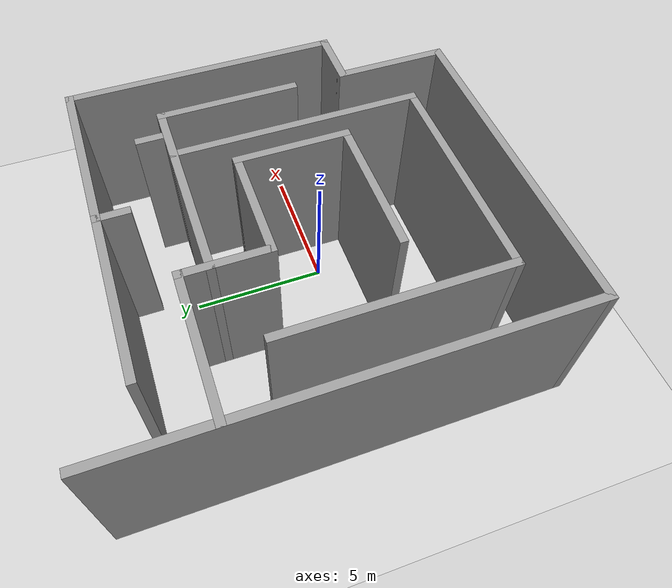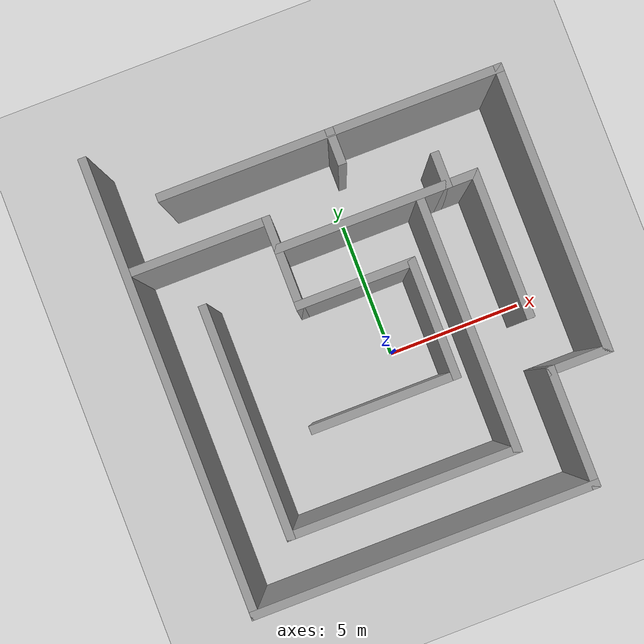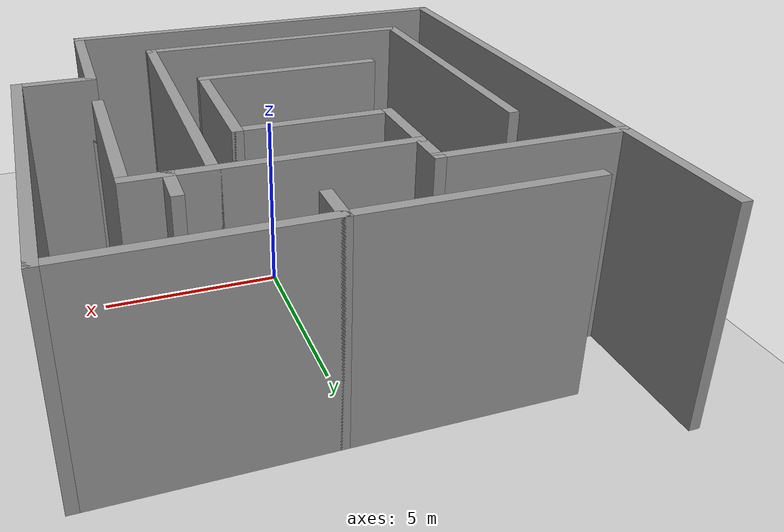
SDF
<sdf version="1.6">
 <world name="default">
  <light name="sun" type="directional">
   <pose>0 0 10 0 -0 0</pose>
   <diffuse>0.8 0.8 0.8 1</diffuse>
   <specular>0.2 0.2 0.2 1</specular>
   <attenuation>
    <range>1000</range>
    <constant>0.9</constant>
    <linear>0.01</linear>
    <quadratic>0.001</quadratic>
   </attenuation>
   <direction>-0.5 0.1 -0.9</direction>
  </light>
  <model name="ground_plane">
   <static>1</static>
   <link name="link">
    <collision name="collision">
     <geometry><plane><normal>0 0 1</normal><size>100 100</size></plane></geometry>
     <surface>
      <contact><collide_bitmask>65535</collide_bitmask></contact>
      <friction><ode><mu>100</mu><mu2>50</mu2></ode></friction>
     </surface>
    </collision>
    <visual name="visual">
     <cast_shadows>0</cast_shadows>
     <geometry><plane><normal>0 0 1</normal><size>100 100</size></plane></geometry>
     <material>
      <script><uri>file://media/materials/scripts/gazebo.material</uri><name>Gazebo/Grey</name></script>
     </material>
    </visual>
   </link>
  </model>
  <gravity>0 0 -9.8</gravity>
  <magnetic_field>6e-06 2.3e-05 -4.2e-05</magnetic_field>
  <atmosphere type="adiabatic"/>
  <physics name="default_physics" default="0" type="ode">
   <max_step_size>0.001</max_step_size>
   <real_time_factor>1</real_time_factor>
   <real_time_update_rate>1000</real_time_update_rate>
  </physics>
  <scene><ambient>0.4 0.4 0.4 1</ambient><background>0.7 0.7 0.7 1</background><shadows>1</shadows></scene>
  <audio><device>default</device></audio>
  <spherical_coordinates>
   <surface_model>EARTH_WGS84</surface_model>
   <latitude_deg>0</latitude_deg>
   <longitude_deg>0</longitude_deg>
   <elevation>0</elevation>
   <heading_deg>0</heading_deg>
  </spherical_coordinates>
  <model name="maze2">
   <pose>-0.5 1.5 0 0 -0 0</pose>
   <link name="Wall_11">
    <collision name="Wall_11_Collision">
     <geometry><box><size>2.3 0.3 6</size></box></geometry>
     <pose>0 0 3 0 -0 0</pose>
    </collision>
    <visual name="Wall_11_Visual">
     <pose>0 0 3 0 -0 0</pose>
     <geometry><box><size>2.3 0.3 6</size></box></geometry>
     <material>
      <script><uri>file://media/materials/scripts/gazebo.material</uri><name>Gazebo/Grey</name></script>
      <ambient>1 1 1 1</ambient>
     </material>
     <meta><layer>0</layer></meta>
    </visual>
    <pose>6 -4 0 0 -0 0</pose>
   </link>
   <link name="Wall_13">
    <collision name="Wall_13_Collision">
     <geometry><box><size>10.3 0.3 6</size></box></geometry>
     <pose>0 0 3 0 -0 0</pose>
    </collision>
    <visual name="Wall_13_Visual">
     <pose>0 0 3 0 -0 0</pose>
     <geometry><box><size>10.3 0.3 6</size></box></geometry>
     <material>
      <script><uri>file://media/materials/scripts/gazebo.material</uri><name>Gazebo/Grey</name></script>
      <ambient>1 1 1 1</ambient>
     </material>
     <meta><layer>0</layer></meta>
    </visual>
    <pose>7 1 0 0 -0 1.5708</pose>
   </link>
   <link name="Wall_15">
    <collision name="Wall_15_Collision">
     <geometry><box><size>12.3 0.3 6</size></box></geometry>
     <pose>0 0 3 0 -0 0</pose>
    </collision>
    <visual name="Wall_15_Visual">
     <pose>0 0 3 0 -0 0</pose>
     <geometry><box><size>12.3 0.3 6</size></box></geometry>
     <material>
      <script><uri>file://media/materials/scripts/gazebo.material</uri><name>Gazebo/Grey</name></script>
      <ambient>1 1 1 1</ambient>
     </material>
     <meta><layer>0</layer></meta>
    </visual>
    <pose>1 6 0 0 -0 3.14159</pose>
   </link>
   <link name="Wall_17">
    <collision name="Wall_17_Collision">
     <geometry><box><size>5.3 0.3 6</size></box></geometry>
     <pose>0 0 3 0 -0 0</pose>
    </collision>
    <visual name="Wall_17_Visual">
     <pose>0 0 3 0 -0 0</pose>
     <geometry><box><size>5.3 0.3 6</size></box></geometry>
     <material>
      <script><uri>file://media/materials/scripts/gazebo.material</uri><name>Gazebo/Grey</name></script>
      <ambient>1 1 1 1</ambient>
     </material>
     <meta><layer>0</layer></meta>
    </visual>
    <pose>-4.5 4 0 0 -0 0</pose>
   </link>
   <link name="Wall_19">
    <collision name="Wall_19_Collision">
     <geometry><box><size>3.3 0.3 6</size></box></geometry>
     <pose>0 0 3 0 -0 0</pose>
    </collision>
    <visual name="Wall_19_Visual">
     <pose>0 0 3 0 -0 0</pose>
     <geometry><box><size>3.3 0.3 6</size></box></geometry>
     <material>
      <script><uri>file://media/materials/scripts/gazebo.material</uri><name>Gazebo/Grey</name></script>
      <ambient>1 1 1 1</ambient>
     </material>
     <meta><layer>0</layer></meta>
    </visual>
    <pose>-2 2.5 0 0 -0 -1.5708</pose>
   </link>
   <link name="Wall_21">
    <collision name="Wall_21_Collision">
     <geometry><box><size>4.3 0.3 6</size></box></geometry>
     <pose>0 0 3 0 -0 0</pose>
    </collision>
    <visual name="Wall_21_Visual">
     <pose>0 0 3 0 -0 0</pose>
     <geometry><box><size>4.3 0.3 6</size></box></geometry>
     <material>
      <script><uri>file://media/materials/scripts/gazebo.material</uri><name>Gazebo/Grey</name></script>
      <ambient>1 1 1 1</ambient>
     </material>
     <meta><layer>0</layer></meta>
    </visual>
    <pose>0 1 0 0 -0 0</pose>
   </link>
   <link name="Wall_23">
    <collision name="Wall_23_Collision">
     <geometry><box><size>4.3 0.3 6</size></box></geometry>
     <pose>0 0 3 0 -0 0</pose>
    </collision>
    <visual name="Wall_23_Visual">
     <pose>0 0 3 0 -0 0</pose>
     <geometry><box><size>4.3 0.3 6</size></box></geometry>
     <material>
      <script><uri>file://media/materials/scripts/gazebo.material</uri><name>Gazebo/Grey</name></script>
      <ambient>1 1 1 1</ambient>
     </material>
     <meta><layer>0</layer></meta>
    </visual>
    <pose>2 -1 0 0 -0 -1.5708</pose>
   </link>
   <link name="Wall_25">
    <collision name="Wall_25_Collision">
     <geometry><box><size>5.3 0.3 6</size></box></geometry>
     <pose>0 0 3 0 -0 0</pose>
    </collision>
    <visual name="Wall_25_Visual">
     <pose>0 0 3 0 -0 0</pose>
     <geometry><box><size>5.3 0.3 6</size></box></geometry>
     <material>
      <script><uri>file://media/materials/scripts/gazebo.material</uri><name>Gazebo/Grey</name></script>
      <ambient>1 1 1 1</ambient>
     </material>
     <meta><layer>0</layer></meta>
    </visual>
    <pose>-0.5 -3 0 0 -0 3.14159</pose>
   </link>
   <link name="Wall_27">
    <collision name="Wall_27_Collision">
     <geometry><box><size>7.3 0.3 6</size></box></geometry>
     <pose>0 0 3 0 -0 0</pose>
    </collision>
    <visual name="Wall_27_Visual">
     <pose>0 0 3 0 -0 0</pose>
     <geometry><box><size>7.3 0.3 6</size></box></geometry>
     <material>
      <script><uri>file://media/materials/scripts/gazebo.material</uri><name>Gazebo/Grey</name></script>
      <ambient>1 1 1 1</ambient>
     </material>
     <meta><layer>0</layer></meta>
    </visual>
    <pose>1.5 3 0 0 -0 0</pose>
   </link>
   <link name="Wall_29">
    <collision name="Wall_29_Collision">
     <geometry><box><size>5.3 0.3 6</size></box></geometry>
     <pose>0 0 3 0 -0 0</pose>
    </collision>
    <visual name="Wall_29_Visual">
     <pose>0 0 3 0 -0 0</pose>
     <geometry><box><size>5.3 0.3 6</size></box></geometry>
     <material>
      <script><uri>file://media/materials/scripts/gazebo.material</uri><name>Gazebo/Grey</name></script>
      <ambient>1 1 1 1</ambient>
     </material>
     <meta><layer>0</layer></meta>
    </visual>
    <pose>5 0.5 0 0 -0 -1.5708</pose>
   </link>
   <link name="Wall_3">
    <collision name="Wall_3_Collision">
     <geometry><box><size>16.3 0.3 6</size></box></geometry>
     <pose>0 0 3 0 -0 0</pose>
    </collision>
    <visual name="Wall_3_Visual">
     <pose>0 0 3 0 -0 0</pose>
     <geometry><box><size>16.3 0.3 6</size></box></geometry>
     <material>
      <script><uri>file://media/materials/scripts/gazebo.material</uri><name>Gazebo/Grey</name></script>
      <ambient>1 1 1 1</ambient>
     </material>
     <meta><layer>0</layer></meta>
    </visual>
    <pose>-7 0 0 0 -0 1.5708</pose>
   </link>
   <link name="Wall_33">
    <collision name="Wall_33_Collision">
     <geometry><box><size>9.3 0.3 6</size></box></geometry>
     <pose>0 0 3 0 -0 0</pose>
    </collision>
    <visual name="Wall_33_Visual">
     <pose>0 0 3 0 -0 0</pose>
     <geometry><box><size>9.3 0.3 6</size></box></geometry>
     <material>
      <script><uri>file://media/materials/scripts/gazebo.material</uri><name>Gazebo/Grey</name></script>
      <ambient>1 1 1 1</ambient>
     </material>
     <meta><layer>0</layer></meta>
    </visual>
    <pose>3 -1.5 0 0 -0 -1.5708</pose>
   </link>
   <link name="Wall_35">
    <collision name="Wall_35_Collision">
     <geometry><box><size>8.3 0.3 6</size></box></geometry>
     <pose>0 0 3 0 -0 0</pose>
    </collision>
    <visual name="Wall_35_Visual">
     <pose>0 0 3 0 -0 0</pose>
     <geometry><box><size>8.3 0.3 6</size></box></geometry>
     <material>
      <script><uri>file://media/materials/scripts/gazebo.material</uri><name>Gazebo/Grey</name></script>
      <ambient>1 1 1 1</ambient>
     </material>
     <meta><layer>0</layer></meta>
    </visual>
    <pose>-1 -6 0 0 -0 3.14159</pose>
   </link>
   <link name="Wall_37">
    <collision name="Wall_37_Collision">
     <geometry><box><size>8.3 0.3 6</size></box></geometry>
     <pose>0 0 3 0 -0 0</pose>
    </collision>
    <visual name="Wall_37_Visual">
     <pose>0 0 3 0 -0 0</pose>
     <geometry><box><size>8.3 0.3 6</size></box></geometry>
     <material>
      <script><uri>file://media/materials/scripts/gazebo.material</uri><name>Gazebo/Grey</name></script>
      <ambient>1 1 1 1</ambient>
     </material>
     <meta><layer>0</layer></meta>
    </visual>
    <pose>-5 -2 0 0 -0 1.5708</pose>
   </link>
   <link name="Wall_39">
    <collision name="Wall_39_Collision">
     <geometry><box><size>1.3 0.3 6</size></box></geometry>
     <pose>0 0 3 0 -0 0</pose>
    </collision>
    <visual name="Wall_39_Visual">
     <pose>0 0 3 0 -0 0</pose>
     <geometry><box><size>1.3 0.3 6</size></box></geometry>
     <material>
      <script><uri>file://media/materials/scripts/gazebo.material</uri><name>Gazebo/Grey</name></script>
      <ambient>1 1 1 1</ambient>
     </material>
     <meta><layer>0</layer></meta>
    </visual>
    <pose>4 3.5 0 0 -0 1.5708</pose>
   </link>
   <link name="Wall_43">
    <collision name="Wall_43_Collision">
     <geometry><box><size>1.3 0.3 6</size></box></geometry>
     <pose>0 0 3 0 -0 0</pose>
    </collision>
    <visual name="Wall_43_Visual">
     <pose>0 0 3 0 -0 0</pose>
     <geometry><box><size>1.3 0.3 6</size></box></geometry>
     <material>
      <script><uri>file://media/materials/scripts/gazebo.material</uri><name>Gazebo/Grey</name></script>
      <ambient>1 1 1 1</ambient>
     </material>
     <meta><layer>0</layer></meta>
    </visual>
    <pose>1 5.5 0 0 -0 -1.5708</pose>
   </link>
   <link name="Wall_5">
    <collision name="Wall_5_Collision">
     <geometry><box><size>12.3 0.3 6</size></box></geometry>
     <pose>0 0 3 0 -0 0</pose>
    </collision>
    <visual name="Wall_5_Visual">
     <pose>0 0 3 0 -0 0</pose>
     <geometry><box><size>12.3 0.3 6</size></box></geometry>
     <material>
      <script><uri>file://media/materials/scripts/gazebo.material</uri><name>Gazebo/Grey</name></script>
      <ambient>1 1 1 1</ambient>
     </material>
     <meta><layer>0</layer></meta>
    </visual>
    <pose>-1 -8 0 0 -0 0</pose>
   </link>
   <link name="Wall_9">
    <collision name="Wall_9_Collision">
     <geometry><box><size>4.3 0.3 6</size></box></geometry>
     <pose>0 0 3 0 -0 0</pose>
    </collision>
    <visual name="Wall_9_Visual">
     <pose>0 0 3 0 -0 0</pose>
     <geometry><box><size>4.3 0.3 6</size></box></geometry>
     <material>
      <script><uri>file://media/materials/scripts/gazebo.material</uri><name>Gazebo/Grey</name></script>
      <ambient>1 1 1 1</ambient>
     </material>
     <meta><layer>0</layer></meta>
    </visual>
    <pose>5 -6 0 0 -0 1.5708</pose>
   </link>
   <static>1</static>
  </model>
 </world>
</sdf>
